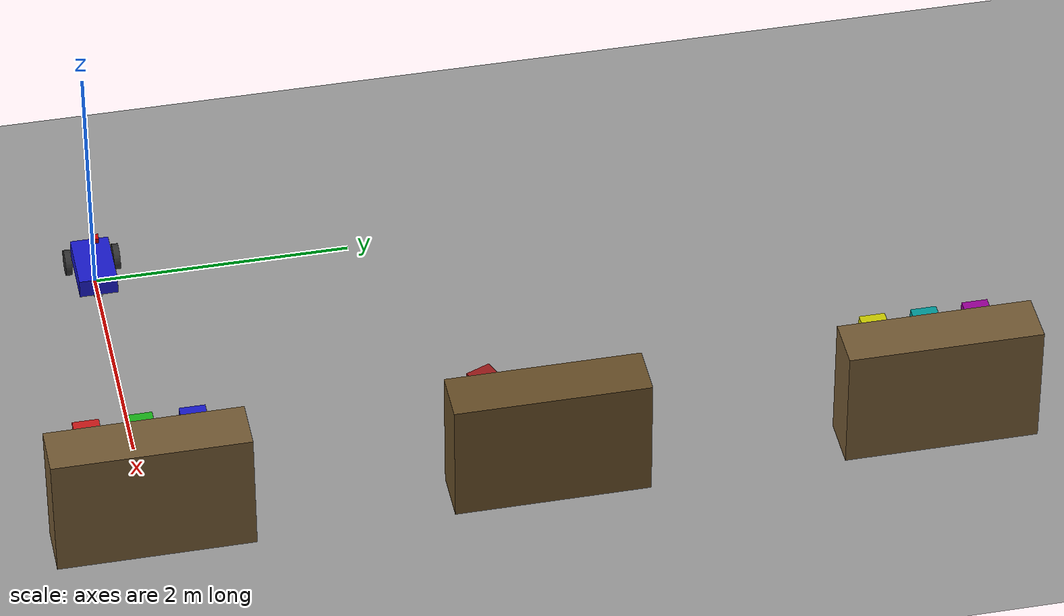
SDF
<?xml version="1.0"?>
<sdf version="1.6">
  <world name="warehouse">
    <physics name="1ms" type="ignored">
      <max_step_size>0.001</max_step_size>
      <real_time_factor>1.0</real_time_factor>
    </physics>

    <plugin filename="gz-sim-physics-system" name="gz::sim::systems::Physics"/>
    <plugin filename="gz-sim-user-commands-system" name="gz::sim::systems::UserCommands"/>
    <plugin filename="gz-sim-scene-broadcaster-system" name="gz::sim::systems::SceneBroadcaster"/>
    <plugin filename="gz-sim-sensors-system" name="gz::sim::systems::Sensors">
      <render_engine>ogre2</render_engine>
    </plugin>

    <light type="directional" name="sun">
      <cast_shadows>true</cast_shadows>
      <pose>0 0 10 0 0 0</pose>
      <diffuse>0.8 0.8 0.8 1</diffuse>
      <specular>0.2 0.2 0.2 1</specular>
      <attenuation><range>1000</range><constant>0.9</constant><linear>0.01</linear><quadratic>0.001</quadratic></attenuation>
      <direction>-0.5 0.1 -0.9</direction>
    </light>

    <model name="ground"><static>true</static>
      <link name="link">
        <collision name="c"><geometry><plane><normal>0 0 1</normal><size>100 100</size></plane></geometry></collision>
        <visual name="v"><geometry><plane><normal>0 0 1</normal><size>100 100</size></plane></geometry>
          <material><ambient>0.6 0.6 0.6 1</ambient><diffuse>0.6 0.6 0.6 1</diffuse></material></visual>
      </link>
    </model>

    <!-- Shelves: 0.4(depth-x) x 1.5(wide-y) x 1.0(height-z), front faces -x toward robot -->
    <!-- SHELF 1 at y=0, items in front at x=2.6 -->
    <model name="shelf1_rack"><static>true</static><pose>3 0 0.5 0 0 0</pose>
      <link name="l"><visual name="v"><geometry><box><size>0.4 1.5 1.0</size></box></geometry>
        <material><ambient>0.45 0.35 0.2 1</ambient><diffuse>0.45 0.35 0.2 1</diffuse></material></visual>
        <collision name="c"><geometry><box><size>0.4 1.5 1.0</size></box></geometry></collision></link>
    </model>
    <model name="s1_item1"><static>true</static><pose>2.6 -0.4 0.65 0 0 0</pose>
      <link name="l"><visual name="v"><geometry><box><size>0.2 0.2 0.3</size></box></geometry>
        <material><ambient>0.8 0.1 0.1 1</ambient><diffuse>0.8 0.1 0.1 1</diffuse></material></visual></link>
    </model>
    <model name="s1_item2"><static>true</static><pose>2.6 0.0 0.65 0 0 0</pose>
      <link name="l"><visual name="v"><geometry><box><size>0.2 0.2 0.3</size></box></geometry>
        <material><ambient>0.1 0.7 0.1 1</ambient><diffuse>0.1 0.7 0.1 1</diffuse></material></visual></link>
    </model>
    <model name="s1_item3"><static>true</static><pose>2.6 0.4 0.65 0 0 0</pose>
      <link name="l"><visual name="v"><geometry><box><size>0.2 0.2 0.3</size></box></geometry>
        <material><ambient>0.1 0.1 0.8 1</ambient><diffuse>0.1 0.1 0.8 1</diffuse></material></visual></link>
    </model>

    <!-- SHELF 2 at y=3 (damaged: tilted item, dark stain, fallen box) -->
    <model name="shelf2_rack"><static>true</static><pose>3 3 0.5 0 0 0</pose>
      <link name="l"><visual name="v"><geometry><box><size>0.4 1.5 1.0</size></box></geometry>
        <material><ambient>0.4 0.3 0.15 1</ambient><diffuse>0.4 0.3 0.15 1</diffuse></material></visual>
        <collision name="c"><geometry><box><size>0.4 1.5 1.0</size></box></geometry></collision></link>
    </model>
    <model name="s2_tilted"><static>true</static><pose>2.6 2.6 0.65 0 0 0.4</pose>
      <link name="l"><visual name="v"><geometry><box><size>0.2 0.2 0.3</size></box></geometry>
        <material><ambient>0.6 0.1 0.1 1</ambient><diffuse>0.6 0.1 0.1 1</diffuse></material></visual></link>
    </model>
    <model name="s2_damaged"><static>true</static><pose>2.6 3.0 0.55 0.3 0 0</pose>
      <link name="l"><visual name="v"><geometry><box><size>0.2 0.2 0.3</size></box></geometry>
        <material><ambient>0.15 0.1 0.05 1</ambient><diffuse>0.15 0.1 0.05 1</diffuse></material></visual></link>
    </model>
    <model name="s2_fallen"><static>true</static><pose>2.3 3.3 0.1 1.57 0 0</pose>
      <link name="l"><visual name="v"><geometry><box><size>0.2 0.2 0.3</size></box></geometry>
        <material><ambient>0.7 0.4 0.0 1</ambient><diffuse>0.7 0.4 0.0 1</diffuse></material></visual></link>
    </model>

    <!-- SHELF 3 at y=6, normal items -->
    <model name="shelf3_rack"><static>true</static><pose>3 6 0.5 0 0 0</pose>
      <link name="l"><visual name="v"><geometry><box><size>0.4 1.5 1.0</size></box></geometry>
        <material><ambient>0.45 0.35 0.2 1</ambient><diffuse>0.45 0.35 0.2 1</diffuse></material></visual>
        <collision name="c"><geometry><box><size>0.4 1.5 1.0</size></box></geometry></collision></link>
    </model>
    <model name="s3_item1"><static>true</static><pose>2.6 5.6 0.65 0 0 0</pose>
      <link name="l"><visual name="v"><geometry><box><size>0.2 0.2 0.3</size></box></geometry>
        <material><ambient>0.8 0.8 0.0 1</ambient><diffuse>0.8 0.8 0.0 1</diffuse></material></visual></link>
    </model>
    <model name="s3_item2"><static>true</static><pose>2.6 6.0 0.65 0 0 0</pose>
      <link name="l"><visual name="v"><geometry><box><size>0.2 0.2 0.3</size></box></geometry>
        <material><ambient>0.0 0.6 0.6 1</ambient><diffuse>0.0 0.6 0.6 1</diffuse></material></visual></link>
    </model>
    <model name="s3_item3"><static>true</static><pose>2.6 6.4 0.65 0 0 0</pose>
      <link name="l"><visual name="v"><geometry><box><size>0.2 0.2 0.3</size></box></geometry>
        <material><ambient>0.6 0.0 0.6 1</ambient><diffuse>0.6 0.0 0.6 1</diffuse></material></visual></link>
    </model>

    <!-- ROBOT - camera raised to see shelf items -->
    <model name="robot">
      <pose>0 0 0.15 0 0 0</pose>
      <link name="chassis">
        <inertial><mass>5.0</mass><inertia><ixx>0.1</ixx><iyy>0.1</iyy><izz>0.05</izz></inertia></inertial>
        <visual name="v"><geometry><box><size>0.5 0.3 0.15</size></box></geometry>
          <material><ambient>0.1 0.1 0.8 1</ambient><diffuse>0.1 0.1 0.8 1</diffuse></material></visual>
        <collision name="c"><geometry><box><size>0.5 0.3 0.15</size></box></geometry></collision>
      </link>
      <link name="left_wheel">
        <pose>-0.15 0.19 -0.05 -1.5707 0 0</pose>
        <inertial><mass>1</mass><inertia><ixx>0.02</ixx><iyy>0.02</iyy><izz>0.02</izz></inertia></inertial>
        <visual name="v"><geometry><cylinder><radius>0.1</radius><length>0.05</length></cylinder></geometry>
          <material><ambient>0.2 0.2 0.2 1</ambient></material></visual>
        <collision name="c"><geometry><cylinder><radius>0.1</radius><length>0.05</length></cylinder></geometry></collision>
      </link>
      <link name="right_wheel">
        <pose>-0.15 -0.19 -0.05 -1.5707 0 0</pose>
        <inertial><mass>1</mass><inertia><ixx>0.02</ixx><iyy>0.02</iyy><izz>0.02</izz></inertia></inertial>
        <visual name="v"><geometry><cylinder><radius>0.1</radius><length>0.05</length></cylinder></geometry>
          <material><ambient>0.2 0.2 0.2 1</ambient></material></visual>
        <collision name="c"><geometry><cylinder><radius>0.1</radius><length>0.05</length></cylinder></geometry></collision>
      </link>
      <link name="caster">
        <pose>0.18 0 -0.12 0 0 0</pose>
        <inertial><mass>0.5</mass><inertia><ixx>0.005</ixx><iyy>0.005</iyy><izz>0.005</izz></inertia></inertial>
        <visual name="v"><geometry><sphere><radius>0.04</radius></sphere></geometry></visual>
        <collision name="c"><geometry><sphere><radius>0.04</radius></sphere></geometry>
          <surface><friction><ode><mu>0</mu><mu2>0</mu2></ode></friction></surface></collision>
      </link>
      <link name="camera_link">
        <pose>0.2 0 0.45 0 0.2 0</pose>
        <inertial><mass>0.1</mass><inertia><ixx>0.0001</ixx><iyy>0.0001</iyy><izz>0.0001</izz></inertia></inertial>
        <visual name="v"><geometry><box><size>0.05 0.05 0.05</size></box></geometry>
          <material><ambient>0.8 0.0 0.0 1</ambient><diffuse>0.8 0 0 1</diffuse></material></visual>
        <sensor name="camera" type="camera">
          <always_on>true</always_on><update_rate>10</update_rate><topic>/camera/image_raw</topic>
          <camera><horizontal_fov>1.2</horizontal_fov>
            <image><width>640</width><height>480</height></image>
            <clip><near>0.1</near><far>50</far></clip></camera>
        </sensor>
      </link>
      <joint name="left_wheel_joint" type="revolute">
        <parent>chassis</parent><child>left_wheel</child>
        <axis><xyz>0 0 1</xyz><limit><lower>-1.79769e+308</lower><upper>1.79769e+308</upper></limit></axis>
      </joint>
      <joint name="right_wheel_joint" type="revolute">
        <parent>chassis</parent><child>right_wheel</child>
        <axis><xyz>0 0 1</xyz><limit><lower>-1.79769e+308</lower><upper>1.79769e+308</upper></limit></axis>
      </joint>
      <joint name="caster_wheel" type="ball"><parent>chassis</parent><child>caster</child></joint>
      <joint name="camera_joint" type="fixed"><parent>chassis</parent><child>camera_link</child></joint>

      <plugin filename="gz-sim-diff-drive-system" name="gz::sim::systems::DiffDrive">
        <left_joint>left_wheel_joint</left_joint>
        <right_joint>right_wheel_joint</right_joint>
        <wheel_separation>0.38</wheel_separation>
        <wheel_radius>0.1</wheel_radius>
        <odom_publish_frequency>20</odom_publish_frequency>
        <topic>/cmd_vel</topic>
        <odom_topic>/odom</odom_topic>
        <tf_topic>/tf</tf_topic>
        <frame_id>odom</frame_id>
        <child_frame_id>chassis</child_frame_id>
        <max_linear_acceleration>1</max_linear_acceleration>
        <min_linear_acceleration>-1</min_linear_acceleration>
        <max_angular_acceleration>2</max_angular_acceleration>
        <min_angular_acceleration>-2</min_angular_acceleration>
        <max_linear_velocity>0.5</max_linear_velocity>
        <min_linear_velocity>-0.5</min_linear_velocity>
        <max_angular_velocity>1</max_angular_velocity>
        <min_angular_velocity>-1</min_angular_velocity>
      </plugin>
    </model>

  </world>
</sdf>
